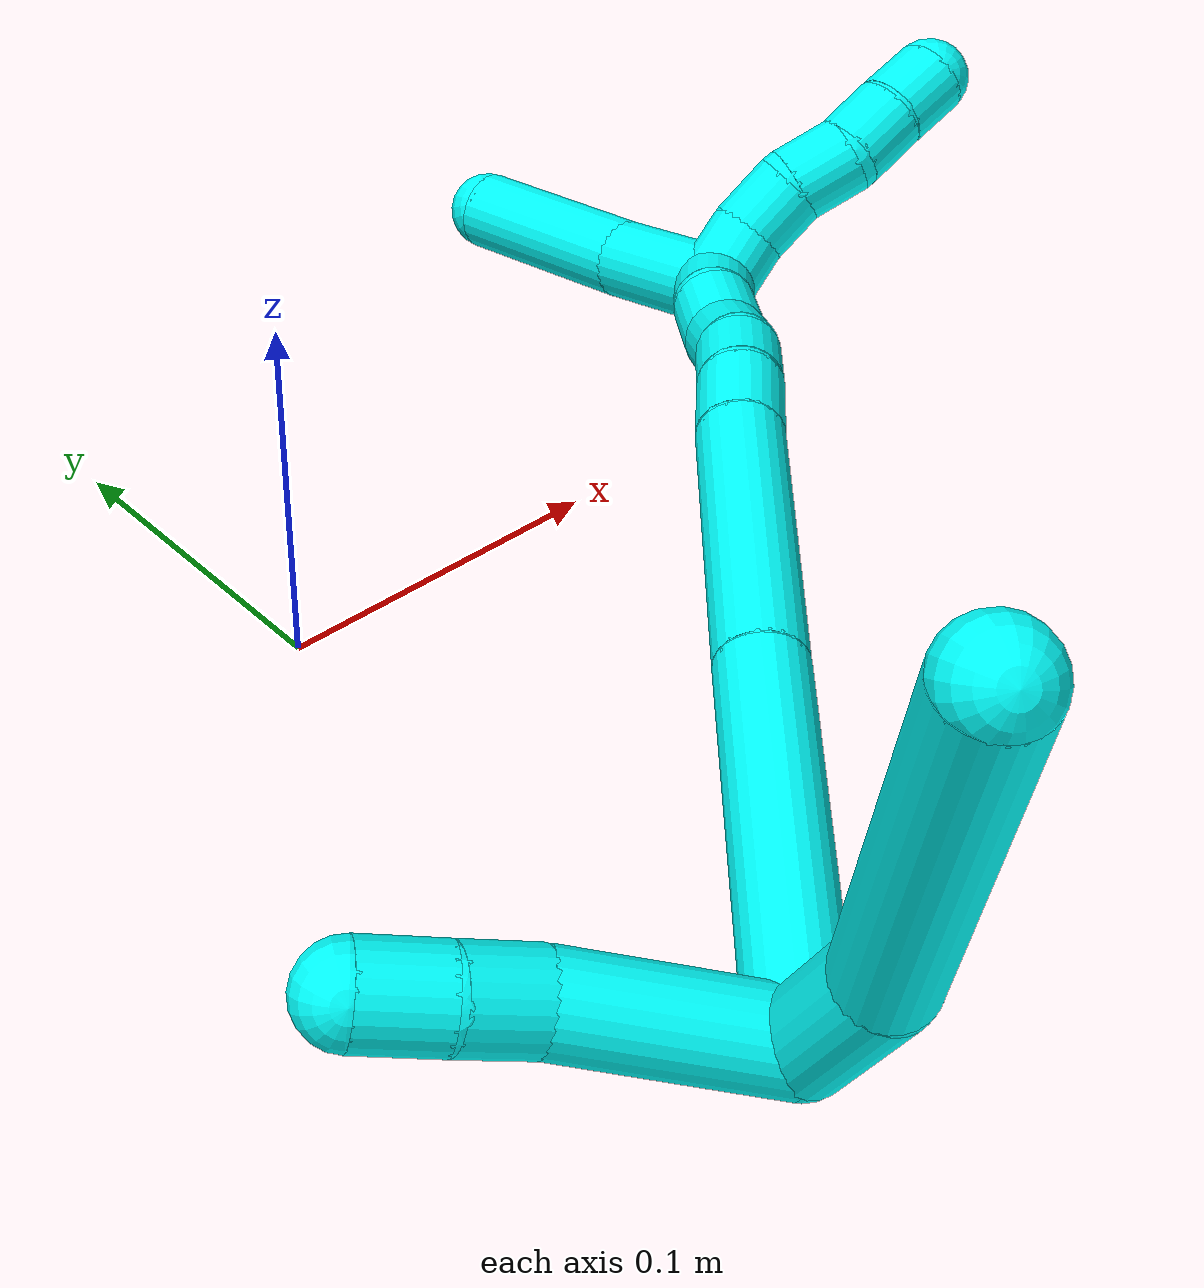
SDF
<sdf version="1.7">
 <world name="default">
  <model name="3">
   <static>0</static>
   <link name="3">
    <collision name="collision-cylinder-e_1_2_8">
     <pose>0.000595 0.011955 0.015941 -0.643487 0.029873 -0.009958</pose>
     <geometry><cylinder><radius>0.0125</radius><length>0.03987</length></cylinder></geometry>
     <surface>
      <friction><ode><mu>1.16</mu><mu2>1.16</mu2><slip1>0</slip1><slip2>0</slip2></ode></friction>
      <contact><ode><kp>1e+06</kp><kd>1</kd><max_vel>0</max_vel><min_depth>0.001</min_depth></ode></contact>
     </surface>
    </collision>
    <visual name="visual-cylinder-e_1_2_8">
     <pose>0.000595 0.011955 0.015941 -0.643487 0.029873 -0.009958</pose>
     <geometry><cylinder><radius>0.0125</radius><length>0.03987</length></cylinder></geometry>
     <material><ambient>0.003922 1 0.996078 1</ambient></material>
    </visual>
    <collision name="collision-cylinder-e_2_8_6">
     <pose>-0.013647 0.056044 0.074066 -0.650964 -0.272839 0.092588</pose>
     <geometry><cylinder><radius>0.0125</radius><length>0.11013</length></cylinder></geometry>
     <surface>
      <friction><ode><mu>1.16</mu><mu2>1.16</mu2><slip1>0</slip1><slip2>0</slip2></ode></friction>
      <contact><ode><kp>1e+06</kp><kd>1</kd><max_vel>0</max_vel><min_depth>0.001</min_depth></ode></contact>
     </surface>
    </collision>
    <visual name="visual-cylinder-e_2_8_6">
     <pose>-0.013647 0.056044 0.074066 -0.650964 -0.272839 0.092588</pose>
     <geometry><cylinder><radius>0.0125</radius><length>0.11013</length></cylinder></geometry>
     <material><ambient>0.003922 1 0.996078 1</ambient></material>
    </visual>
    <collision name="collision-cylinder-e_1_2_9">
     <pose>-0.028152 -0.005107 0.000392 1.49417 -1.39082 -1.31594</pose>
     <geometry><cylinder><radius>0.0125</radius><length>0.057228</length></cylinder></geometry>
     <surface>
      <friction><ode><mu>1.16</mu><mu2>1.16</mu2><slip1>0</slip1><slip2>0</slip2></ode></friction>
      <contact><ode><kp>1e+06</kp><kd>1</kd><max_vel>0</max_vel><min_depth>0.001</min_depth></ode></contact>
     </surface>
    </collision>
    <visual name="visual-cylinder-e_1_2_9">
     <pose>-0.028152 -0.005107 0.000392 1.49417 -1.39082 -1.31594</pose>
     <geometry><cylinder><radius>0.0125</radius><length>0.057228</length></cylinder></geometry>
     <material><ambient>0.003922 1 0.996078 1</ambient></material>
    </visual>
    <collision name="collision-cylinder-e_2_9_10">
     <pose>-0.066051 -0.012727 0.003223 0.8004 -1.22589 -0.57836</pose>
     <geometry><cylinder><radius>0.0125</radius><length>0.020716</length></cylinder></geometry>
     <surface>
      <friction><ode><mu>1.16</mu><mu2>1.16</mu2><slip1>0</slip1><slip2>0</slip2></ode></friction>
      <contact><ode><kp>1e+06</kp><kd>1</kd><max_vel>0</max_vel><min_depth>0.001</min_depth></ode></contact>
     </surface>
    </collision>
    <visual name="visual-cylinder-e_2_9_10">
     <pose>-0.066051 -0.012727 0.003223 0.8004 -1.22589 -0.57836</pose>
     <geometry><cylinder><radius>0.0125</radius><length>0.020716</length></cylinder></geometry>
     <material><ambient>0.003922 1 0.996078 1</ambient></material>
    </visual>
    <collision name="collision-cylinder-e_3_10_5">
     <pose>-0.086364 -0.018251 0.006639 1.25701 -1.27974 -0.991832</pose>
     <geometry><cylinder><radius>0.0125</radius><length>0.022056</length></cylinder></geometry>
     <surface>
      <friction><ode><mu>1.16</mu><mu2>1.16</mu2><slip1>0</slip1><slip2>0</slip2></ode></friction>
      <contact><ode><kp>1e+06</kp><kd>1</kd><max_vel>0</max_vel><min_depth>0.001</min_depth></ode></contact>
     </surface>
    </collision>
    <visual name="visual-cylinder-e_3_10_5">
     <pose>-0.086364 -0.018251 0.006639 1.25701 -1.27974 -0.991832</pose>
     <geometry><cylinder><radius>0.0125</radius><length>0.022056</length></cylinder></geometry>
     <material><ambient>0.003922 1 0.996078 1</ambient></material>
    </visual>
    <collision name="collision-cylinder-e_1_2_11">
     <pose>-0.009407 0.035256 -0.040278 -2.42258 -0.173967 0.455978</pose>
     <geometry><cylinder><radius>0.0125</radius><length>0.108698</length></cylinder></geometry>
     <surface>
      <friction><ode><mu>1.16</mu><mu2>1.16</mu2><slip1>0</slip1><slip2>0</slip2></ode></friction>
      <contact><ode><kp>1e+06</kp><kd>1</kd><max_vel>0</max_vel><min_depth>0.001</min_depth></ode></contact>
     </surface>
    </collision>
    <visual name="visual-cylinder-e_1_2_11">
     <pose>-0.009407 0.035256 -0.040278 -2.42258 -0.173967 0.455978</pose>
     <geometry><cylinder><radius>0.0125</radius><length>0.108698</length></cylinder></geometry>
     <material><ambient>0.003922 1 0.996078 1</ambient></material>
    </visual>
    <collision name="collision-cylinder-e_2_11_12">
     <pose>-0.0252 0.097974 -0.114274 -2.45809 -0.145793 0.404966</pose>
     <geometry><cylinder><radius>0.0125</radius><length>0.087904</length></cylinder></geometry>
     <surface>
      <friction><ode><mu>1.16</mu><mu2>1.16</mu2><slip1>0</slip1><slip2>0</slip2></ode></friction>
      <contact><ode><kp>1e+06</kp><kd>1</kd><max_vel>0</max_vel><min_depth>0.001</min_depth></ode></contact>
     </surface>
    </collision>
    <visual name="visual-cylinder-e_2_11_12">
     <pose>-0.0252 0.097974 -0.114274 -2.45809 -0.145793 0.404966</pose>
     <geometry><cylinder><radius>0.0125</radius><length>0.087904</length></cylinder></geometry>
     <material><ambient>0.003922 1 0.996078 1</ambient></material>
    </visual>
    <collision name="collision-cylinder-e_3_12_13">
     <pose>-0.032369 0.132583 -0.157217 -2.48248 -0.067108 0.195653</pose>
     <geometry><cylinder><radius>0.0125</radius><length>0.023392</length></cylinder></geometry>
     <surface>
      <friction><ode><mu>1.16</mu><mu2>1.16</mu2><slip1>0</slip1><slip2>0</slip2></ode></friction>
      <contact><ode><kp>1e+06</kp><kd>1</kd><max_vel>0</max_vel><min_depth>0.001</min_depth></ode></contact>
     </surface>
    </collision>
    <visual name="visual-cylinder-e_3_12_13">
     <pose>-0.032369 0.132583 -0.157217 -2.48248 -0.067108 0.195653</pose>
     <geometry><cylinder><radius>0.0125</radius><length>0.023392</length></cylinder></geometry>
     <material><ambient>0.003922 1 0.996078 1</ambient></material>
    </visual>
    <collision name="collision-cylinder-e_4_13_14">
     <pose>-0.033482 0.144465 -0.175244 -2.64805 -0.032828 0.130148</pose>
     <geometry><cylinder><radius>0.0125</radius><length>0.020001</length></cylinder></geometry>
     <surface>
      <friction><ode><mu>1.16</mu><mu2>1.16</mu2><slip1>0</slip1><slip2>0</slip2></ode></friction>
      <contact><ode><kp>1e+06</kp><kd>1</kd><max_vel>0</max_vel><min_depth>0.001</min_depth></ode></contact>
     </surface>
    </collision>
    <visual name="visual-cylinder-e_4_13_14">
     <pose>-0.033482 0.144465 -0.175244 -2.64805 -0.032828 0.130148</pose>
     <geometry><cylinder><radius>0.0125</radius><length>0.020001</length></cylinder></geometry>
     <material><ambient>0.003922 1 0.996078 1</ambient></material>
    </visual>
    <collision name="collision-cylinder-e_5_14_15">
     <pose>-0.034517 0.151476 -0.193759 -2.9114 -0.070703 0.593747</pose>
     <geometry><cylinder><radius>0.0125</radius><length>0.020002</length></cylinder></geometry>
     <surface>
      <friction><ode><mu>1.16</mu><mu2>1.16</mu2><slip1>0</slip1><slip2>0</slip2></ode></friction>
      <contact><ode><kp>1e+06</kp><kd>1</kd><max_vel>0</max_vel><min_depth>0.001</min_depth></ode></contact>
     </surface>
    </collision>
    <visual name="visual-cylinder-e_5_14_15">
     <pose>-0.034517 0.151476 -0.193759 -2.9114 -0.070703 0.593747</pose>
     <geometry><cylinder><radius>0.0125</radius><length>0.020002</length></cylinder></geometry>
     <material><ambient>0.003922 1 0.996078 1</ambient></material>
    </visual>
    <collision name="collision-cylinder-e_6_15_16">
     <pose>-0.037346 0.158529 -0.211997 -2.63094 -0.213888 0.780386</pose>
     <geometry><cylinder><radius>0.0125</radius><length>0.02</length></cylinder></geometry>
     <surface>
      <friction><ode><mu>1.16</mu><mu2>1.16</mu2><slip1>0</slip1><slip2>0</slip2></ode></friction>
      <contact><ode><kp>1e+06</kp><kd>1</kd><max_vel>0</max_vel><min_depth>0.001</min_depth></ode></contact>
     </surface>
    </collision>
    <visual name="visual-cylinder-e_6_15_16">
     <pose>-0.037346 0.158529 -0.211997 -2.63094 -0.213888 0.780386</pose>
     <geometry><cylinder><radius>0.0125</radius><length>0.02</length></cylinder></geometry>
     <material><ambient>0.003922 1 0.996078 1</ambient></material>
    </visual>
    <collision name="collision-cylinder-e_7_16_1">
     <pose>-0.039039 0.167206 -0.229722 -2.74052 0.042969 -0.210638</pose>
     <geometry><cylinder><radius>0.0125</radius><length>0.020002</length></cylinder></geometry>
     <surface>
      <friction><ode><mu>1.16</mu><mu2>1.16</mu2><slip1>0</slip1><slip2>0</slip2></ode></friction>
      <contact><ode><kp>1e+06</kp><kd>1</kd><max_vel>0</max_vel><min_depth>0.001</min_depth></ode></contact>
     </surface>
    </collision>
    <visual name="visual-cylinder-e_7_16_1">
     <pose>-0.039039 0.167206 -0.229722 -2.74052 0.042969 -0.210638</pose>
     <geometry><cylinder><radius>0.0125</radius><length>0.020002</length></cylinder></geometry>
     <material><ambient>0.003922 1 0.996078 1</ambient></material>
    </visual>
    <collision name="collision-cylinder-e_1_1_17">
     <pose>-0.036448 0.180767 -0.240337 -1.71636 0.21787 -0.251803</pose>
     <geometry><cylinder><radius>0.0125</radius><length>0.02</length></cylinder></geometry>
     <surface>
      <friction><ode><mu>1.16</mu><mu2>1.16</mu2><slip1>0</slip1><slip2>0</slip2></ode></friction>
      <contact><ode><kp>1e+06</kp><kd>1</kd><max_vel>0</max_vel><min_depth>0.001</min_depth></ode></contact>
     </surface>
    </collision>
    <visual name="visual-cylinder-e_1_1_17">
     <pose>-0.036448 0.180767 -0.240337 -1.71636 0.21787 -0.251803</pose>
     <geometry><cylinder><radius>0.0125</radius><length>0.02</length></cylinder></geometry>
     <material><ambient>0.003922 1 0.996078 1</ambient></material>
    </visual>
    <collision name="collision-cylinder-e_2_17_18">
     <pose>-0.030828 0.199662 -0.240091 -1.39264 0.35315 -0.296162</pose>
     <geometry><cylinder><radius>0.0125</radius><length>0.02</length></cylinder></geometry>
     <surface>
      <friction><ode><mu>1.16</mu><mu2>1.16</mu2><slip1>0</slip1><slip2>0</slip2></ode></friction>
      <contact><ode><kp>1e+06</kp><kd>1</kd><max_vel>0</max_vel><min_depth>0.001</min_depth></ode></contact>
     </surface>
    </collision>
    <visual name="visual-cylinder-e_2_17_18">
     <pose>-0.030828 0.199662 -0.240091 -1.39264 0.35315 -0.296162</pose>
     <geometry><cylinder><radius>0.0125</radius><length>0.02</length></cylinder></geometry>
     <material><ambient>0.003922 1 0.996078 1</ambient></material>
    </visual>
    <collision name="collision-cylinder-e_3_18_19">
     <pose>-0.021211 0.216752 -0.237824 -1.49402 0.663407 -0.617502</pose>
     <geometry><cylinder><radius>0.0125</radius><length>0.02</length></cylinder></geometry>
     <surface>
      <friction><ode><mu>1.16</mu><mu2>1.16</mu2><slip1>0</slip1><slip2>0</slip2></ode></friction>
      <contact><ode><kp>1e+06</kp><kd>1</kd><max_vel>0</max_vel><min_depth>0.001</min_depth></ode></contact>
     </surface>
    </collision>
    <visual name="visual-cylinder-e_3_18_19">
     <pose>-0.021211 0.216752 -0.237824 -1.49402 0.663407 -0.617502</pose>
     <geometry><cylinder><radius>0.0125</radius><length>0.02</length></cylinder></geometry>
     <material><ambient>0.003922 1 0.996078 1</ambient></material>
    </visual>
    <collision name="collision-cylinder-e_4_19_20">
     <pose>-0.010744 0.233424 -0.239145 -1.7858 0.44549 -0.54844</pose>
     <geometry><cylinder><radius>0.0125</radius><length>0.02</length></cylinder></geometry>
     <surface>
      <friction><ode><mu>1.16</mu><mu2>1.16</mu2><slip1>0</slip1><slip2>0</slip2></ode></friction>
      <contact><ode><kp>1e+06</kp><kd>1</kd><max_vel>0</max_vel><min_depth>0.001</min_depth></ode></contact>
     </surface>
    </collision>
    <visual name="visual-cylinder-e_4_19_20">
     <pose>-0.010744 0.233424 -0.239145 -1.7858 0.44549 -0.54844</pose>
     <geometry><cylinder><radius>0.0125</radius><length>0.02</length></cylinder></geometry>
     <material><ambient>0.003922 1 0.996078 1</ambient></material>
    </visual>
    <collision name="collision-cylinder-e_5_20_4">
     <pose>-0.001864 0.250616 -0.244062 -1.9139 0.474691 -0.661375</pose>
     <geometry><cylinder><radius>0.0125</radius><length>0.02</length></cylinder></geometry>
     <surface>
      <friction><ode><mu>1.16</mu><mu2>1.16</mu2><slip1>0</slip1><slip2>0</slip2></ode></friction>
      <contact><ode><kp>1e+06</kp><kd>1</kd><max_vel>0</max_vel><min_depth>0.001</min_depth></ode></contact>
     </surface>
    </collision>
    <visual name="visual-cylinder-e_5_20_4">
     <pose>-0.001864 0.250616 -0.244062 -1.9139 0.474691 -0.661375</pose>
     <geometry><cylinder><radius>0.0125</radius><length>0.02</length></cylinder></geometry>
     <material><ambient>0.003922 1 0.996078 1</ambient></material>
    </visual>
    <collision name="collision-cylinder-e_1_1_21">
     <pose>-0.051444 0.171336 -0.254566 -3.1269 -0.686997 3.10053</pose>
     <geometry><cylinder><radius>0.0125</radius><length>0.040474</length></cylinder></geometry>
     <surface>
      <friction><ode><mu>1.16</mu><mu2>1.16</mu2><slip1>0</slip1><slip2>0</slip2></ode></friction>
      <contact><ode><kp>1e+06</kp><kd>1</kd><max_vel>0</max_vel><min_depth>0.001</min_depth></ode></contact>
     </surface>
    </collision>
    <visual name="visual-cylinder-e_1_1_21">
     <pose>-0.051444 0.171336 -0.254566 -3.1269 -0.686997 3.10053</pose>
     <geometry><cylinder><radius>0.0125</radius><length>0.040474</length></cylinder></geometry>
     <material><ambient>0.003922 1 0.996078 1</ambient></material>
    </visual>
    <collision name="collision-cylinder-e_2_21_3">
     <pose>-0.086371 0.172699 -0.290121 -3.08478 -0.836483 3.0139</pose>
     <geometry><cylinder><radius>0.0125</radius><length>0.059526</length></cylinder></geometry>
     <surface>
      <friction><ode><mu>1.16</mu><mu2>1.16</mu2><slip1>0</slip1><slip2>0</slip2></ode></friction>
      <contact><ode><kp>1e+06</kp><kd>1</kd><max_vel>0</max_vel><min_depth>0.001</min_depth></ode></contact>
     </surface>
    </collision>
    <visual name="visual-cylinder-e_2_21_3">
     <pose>-0.086371 0.172699 -0.290121 -3.08478 -0.836483 3.0139</pose>
     <geometry><cylinder><radius>0.0125</radius><length>0.059526</length></cylinder></geometry>
     <material><ambient>0.003922 1 0.996078 1</ambient></material>
    </visual>
    <collision name="collision-sphere-3">
     <pose>-0.108464 0.173831 -0.310033 0 -0 0</pose>
     <geometry><sphere><radius>0.0125</radius></sphere></geometry>
     <surface>
      <friction><ode><mu>1.16</mu><mu2>1.16</mu2><slip1>0</slip1><slip2>0</slip2></ode></friction>
      <contact><ode><kp>1e+06</kp><kd>1</kd><max_vel>0</max_vel><min_depth>0.001</min_depth></ode></contact>
     </surface>
    </collision>
    <visual name="visual-sphere-3">
     <pose>-0.108464 0.173831 -0.310033 0 -0 0</pose>
     <geometry><sphere><radius>0.0125</radius></sphere></geometry>
     <material><ambient>0.003922 1 0.996078 1</ambient></material>
    </visual>
    <collision name="collision-sphere-21">
     <pose>-0.064278 0.171566 -0.27021 0 -0 0</pose>
     <geometry><sphere><radius>0.0125</radius></sphere></geometry>
     <surface>
      <friction><ode><mu>1.16</mu><mu2>1.16</mu2><slip1>0</slip1><slip2>0</slip2></ode></friction>
      <contact><ode><kp>1e+06</kp><kd>1</kd><max_vel>0</max_vel><min_depth>0.001</min_depth></ode></contact>
     </surface>
    </collision>
    <visual name="visual-sphere-21">
     <pose>-0.064278 0.171566 -0.27021 0 -0 0</pose>
     <geometry><sphere><radius>0.0125</radius></sphere></geometry>
     <material><ambient>0.003922 1 0.996078 1</ambient></material>
    </visual>
    <collision name="collision-sphere-4">
     <pose>0.002706 0.258992 -0.247054 0 -0 0</pose>
     <geometry><sphere><radius>0.0125</radius></sphere></geometry>
     <surface>
      <friction><ode><mu>1.16</mu><mu2>1.16</mu2><slip1>0</slip1><slip2>0</slip2></ode></friction>
      <contact><ode><kp>1e+06</kp><kd>1</kd><max_vel>0</max_vel><min_depth>0.001</min_depth></ode></contact>
     </surface>
    </collision>
    <visual name="visual-sphere-4">
     <pose>0.002706 0.258992 -0.247054 0 -0 0</pose>
     <geometry><sphere><radius>0.0125</radius></sphere></geometry>
     <material><ambient>0.003922 1 0.996078 1</ambient></material>
    </visual>
    <collision name="collision-sphere-20">
     <pose>-0.006435 0.24224 -0.24107 0 -0 0</pose>
     <geometry><sphere><radius>0.0125</radius></sphere></geometry>
     <surface>
      <friction><ode><mu>1.16</mu><mu2>1.16</mu2><slip1>0</slip1><slip2>0</slip2></ode></friction>
      <contact><ode><kp>1e+06</kp><kd>1</kd><max_vel>0</max_vel><min_depth>0.001</min_depth></ode></contact>
     </surface>
    </collision>
    <visual name="visual-sphere-20">
     <pose>-0.006435 0.24224 -0.24107 0 -0 0</pose>
     <geometry><sphere><radius>0.0125</radius></sphere></geometry>
     <material><ambient>0.003922 1 0.996078 1</ambient></material>
    </visual>
    <collision name="collision-sphere-5">
     <pose>-0.096928 -0.021261 0.007616 0 -0 0</pose>
     <geometry><sphere><radius>0.0125</radius></sphere></geometry>
     <surface>
      <friction><ode><mu>1.16</mu><mu2>1.16</mu2><slip1>0</slip1><slip2>0</slip2></ode></friction>
      <contact><ode><kp>1e+06</kp><kd>1</kd><max_vel>0</max_vel><min_depth>0.001</min_depth></ode></contact>
     </surface>
    </collision>
    <visual name="visual-sphere-5">
     <pose>-0.096928 -0.021261 0.007616 0 -0 0</pose>
     <geometry><sphere><radius>0.0125</radius></sphere></geometry>
     <material><ambient>0.003922 1 0.996078 1</ambient></material>
    </visual>
    <collision name="collision-sphere-10">
     <pose>-0.075799 -0.015241 0.005662 0 -0 0</pose>
     <geometry><sphere><radius>0.0125</radius></sphere></geometry>
     <surface>
      <friction><ode><mu>1.16</mu><mu2>1.16</mu2><slip1>0</slip1><slip2>0</slip2></ode></friction>
      <contact><ode><kp>1e+06</kp><kd>1</kd><max_vel>0</max_vel><min_depth>0.001</min_depth></ode></contact>
     </surface>
    </collision>
    <visual name="visual-sphere-10">
     <pose>-0.075799 -0.015241 0.005662 0 -0 0</pose>
     <geometry><sphere><radius>0.0125</radius></sphere></geometry>
     <material><ambient>0.003922 1 0.996078 1</ambient></material>
    </visual>
    <collision name="collision-sphere-6">
     <pose>-0.028485 0.088176 0.11625 0 -0 0</pose>
     <geometry><sphere><radius>0.0125</radius></sphere></geometry>
     <surface>
      <friction><ode><mu>1.16</mu><mu2>1.16</mu2><slip1>0</slip1><slip2>0</slip2></ode></friction>
      <contact><ode><kp>1e+06</kp><kd>1</kd><max_vel>0</max_vel><min_depth>0.001</min_depth></ode></contact>
     </surface>
    </collision>
    <visual name="visual-sphere-6">
     <pose>-0.028485 0.088176 0.11625 0 -0 0</pose>
     <geometry><sphere><radius>0.0125</radius></sphere></geometry>
     <material><ambient>0.003922 1 0.996078 1</ambient></material>
    </visual>
    <collision name="collision-sphere-9">
     <pose>-0.056303 -0.010214 0.000784 0 -0 0</pose>
     <geometry><sphere><radius>0.0125</radius></sphere></geometry>
     <surface>
      <friction><ode><mu>1.16</mu><mu2>1.16</mu2><slip1>0</slip1><slip2>0</slip2></ode></friction>
      <contact><ode><kp>1e+06</kp><kd>1</kd><max_vel>0</max_vel><min_depth>0.001</min_depth></ode></contact>
     </surface>
    </collision>
    <visual name="visual-sphere-9">
     <pose>-0.056303 -0.010214 0.000784 0 -0 0</pose>
     <geometry><sphere><radius>0.0125</radius></sphere></geometry>
     <material><ambient>0.003922 1 0.996078 1</ambient></material>
    </visual>
    <collision name="collision-sphere-2">
     <geometry><sphere><radius>0.0125</radius></sphere></geometry>
     <surface>
      <friction><ode><mu>1.16</mu><mu2>1.16</mu2><slip1>0</slip1><slip2>0</slip2></ode></friction>
      <contact><ode><kp>1e+06</kp><kd>1</kd><max_vel>0</max_vel><min_depth>0.001</min_depth></ode></contact>
     </surface>
    </collision>
    <visual name="visual-sphere-2">
     <geometry><sphere><radius>0.0125</radius></sphere></geometry>
     <material><ambient>0.003922 1 0.996078 1</ambient></material>
    </visual>
    <collision name="collision-sphere-19">
     <pose>-0.015053 0.224608 -0.237219 0 -0 0</pose>
     <geometry><sphere><radius>0.0125</radius></sphere></geometry>
     <surface>
      <friction><ode><mu>1.16</mu><mu2>1.16</mu2><slip1>0</slip1><slip2>0</slip2></ode></friction>
      <contact><ode><kp>1e+06</kp><kd>1</kd><max_vel>0</max_vel><min_depth>0.001</min_depth></ode></contact>
     </surface>
    </collision>
    <visual name="visual-sphere-19">
     <pose>-0.015053 0.224608 -0.237219 0 -0 0</pose>
     <geometry><sphere><radius>0.0125</radius></sphere></geometry>
     <material><ambient>0.003922 1 0.996078 1</ambient></material>
    </visual>
    <collision name="collision-sphere-8">
     <pose>0.001191 0.023911 0.031882 0 -0 0</pose>
     <geometry><sphere><radius>0.0125</radius></sphere></geometry>
     <surface>
      <friction><ode><mu>1.16</mu><mu2>1.16</mu2><slip1>0</slip1><slip2>0</slip2></ode></friction>
      <contact><ode><kp>1e+06</kp><kd>1</kd><max_vel>0</max_vel><min_depth>0.001</min_depth></ode></contact>
     </surface>
    </collision>
    <visual name="visual-sphere-8">
     <pose>0.001191 0.023911 0.031882 0 -0 0</pose>
     <geometry><sphere><radius>0.0125</radius></sphere></geometry>
     <material><ambient>0.003922 1 0.996078 1</ambient></material>
    </visual>
    <collision name="collision-sphere-11">
     <pose>-0.018815 0.070513 -0.080556 0 -0 0</pose>
     <geometry><sphere><radius>0.0125</radius></sphere></geometry>
     <surface>
      <friction><ode><mu>1.16</mu><mu2>1.16</mu2><slip1>0</slip1><slip2>0</slip2></ode></friction>
      <contact><ode><kp>1e+06</kp><kd>1</kd><max_vel>0</max_vel><min_depth>0.001</min_depth></ode></contact>
     </surface>
    </collision>
    <visual name="visual-sphere-11">
     <pose>-0.018815 0.070513 -0.080556 0 -0 0</pose>
     <geometry><sphere><radius>0.0125</radius></sphere></geometry>
     <material><ambient>0.003922 1 0.996078 1</ambient></material>
    </visual>
    <collision name="collision-sphere-12">
     <pose>-0.031585 0.125436 -0.147991 0 -0 0</pose>
     <geometry><sphere><radius>0.0125</radius></sphere></geometry>
     <surface>
      <friction><ode><mu>1.16</mu><mu2>1.16</mu2><slip1>0</slip1><slip2>0</slip2></ode></friction>
      <contact><ode><kp>1e+06</kp><kd>1</kd><max_vel>0</max_vel><min_depth>0.001</min_depth></ode></contact>
     </surface>
    </collision>
    <visual name="visual-sphere-12">
     <pose>-0.031585 0.125436 -0.147991 0 -0 0</pose>
     <geometry><sphere><radius>0.0125</radius></sphere></geometry>
     <material><ambient>0.003922 1 0.996078 1</ambient></material>
    </visual>
    <collision name="collision-sphere-13">
     <pose>-0.033154 0.13973 -0.166442 0 -0 0</pose>
     <geometry><sphere><radius>0.0125</radius></sphere></geometry>
     <surface>
      <friction><ode><mu>1.16</mu><mu2>1.16</mu2><slip1>0</slip1><slip2>0</slip2></ode></friction>
      <contact><ode><kp>1e+06</kp><kd>1</kd><max_vel>0</max_vel><min_depth>0.001</min_depth></ode></contact>
     </surface>
    </collision>
    <visual name="visual-sphere-13">
     <pose>-0.033154 0.13973 -0.166442 0 -0 0</pose>
     <geometry><sphere><radius>0.0125</radius></sphere></geometry>
     <material><ambient>0.003922 1 0.996078 1</ambient></material>
    </visual>
    <collision name="collision-sphere-14">
     <pose>-0.03381 0.1492 -0.184046 0 -0 0</pose>
     <geometry><sphere><radius>0.0125</radius></sphere></geometry>
     <surface>
      <friction><ode><mu>1.16</mu><mu2>1.16</mu2><slip1>0</slip1><slip2>0</slip2></ode></friction>
      <contact><ode><kp>1e+06</kp><kd>1</kd><max_vel>0</max_vel><min_depth>0.001</min_depth></ode></contact>
     </surface>
    </collision>
    <visual name="visual-sphere-14">
     <pose>-0.03381 0.1492 -0.184046 0 -0 0</pose>
     <geometry><sphere><radius>0.0125</radius></sphere></geometry>
     <material><ambient>0.003922 1 0.996078 1</ambient></material>
    </visual>
    <collision name="collision-sphere-15">
     <pose>-0.035223 0.153752 -0.203472 0 -0 0</pose>
     <geometry><sphere><radius>0.0125</radius></sphere></geometry>
     <surface>
      <friction><ode><mu>1.16</mu><mu2>1.16</mu2><slip1>0</slip1><slip2>0</slip2></ode></friction>
      <contact><ode><kp>1e+06</kp><kd>1</kd><max_vel>0</max_vel><min_depth>0.001</min_depth></ode></contact>
     </surface>
    </collision>
    <visual name="visual-sphere-15">
     <pose>-0.035223 0.153752 -0.203472 0 -0 0</pose>
     <geometry><sphere><radius>0.0125</radius></sphere></geometry>
     <material><ambient>0.003922 1 0.996078 1</ambient></material>
    </visual>
    <collision name="collision-sphere-16">
     <pose>-0.039468 0.163305 -0.220523 0 -0 0</pose>
     <geometry><sphere><radius>0.0125</radius></sphere></geometry>
     <surface>
      <friction><ode><mu>1.16</mu><mu2>1.16</mu2><slip1>0</slip1><slip2>0</slip2></ode></friction>
      <contact><ode><kp>1e+06</kp><kd>1</kd><max_vel>0</max_vel><min_depth>0.001</min_depth></ode></contact>
     </surface>
    </collision>
    <visual name="visual-sphere-16">
     <pose>-0.039468 0.163305 -0.220523 0 -0 0</pose>
     <geometry><sphere><radius>0.0125</radius></sphere></geometry>
     <material><ambient>0.003922 1 0.996078 1</ambient></material>
    </visual>
    <collision name="collision-sphere-1">
     <pose>-0.038609 0.171107 -0.238921 0 -0 0</pose>
     <geometry><sphere><radius>0.0125</radius></sphere></geometry>
     <surface>
      <friction><ode><mu>1.16</mu><mu2>1.16</mu2><slip1>0</slip1><slip2>0</slip2></ode></friction>
      <contact><ode><kp>1e+06</kp><kd>1</kd><max_vel>0</max_vel><min_depth>0.001</min_depth></ode></contact>
     </surface>
    </collision>
    <visual name="visual-sphere-1">
     <pose>-0.038609 0.171107 -0.238921 0 -0 0</pose>
     <geometry><sphere><radius>0.0125</radius></sphere></geometry>
     <material><ambient>0.003922 1 0.996078 1</ambient></material>
    </visual>
    <collision name="collision-sphere-18">
     <pose>-0.027369 0.208896 -0.238428 0 -0 0</pose>
     <geometry><sphere><radius>0.0125</radius></sphere></geometry>
     <surface>
      <friction><ode><mu>1.16</mu><mu2>1.16</mu2><slip1>0</slip1><slip2>0</slip2></ode></friction>
      <contact><ode><kp>1e+06</kp><kd>1</kd><max_vel>0</max_vel><min_depth>0.001</min_depth></ode></contact>
     </surface>
    </collision>
    <visual name="visual-sphere-18">
     <pose>-0.027369 0.208896 -0.238428 0 -0 0</pose>
     <geometry><sphere><radius>0.0125</radius></sphere></geometry>
     <material><ambient>0.003922 1 0.996078 1</ambient></material>
    </visual>
    <collision name="collision-sphere-17">
     <pose>-0.034286 0.190427 -0.241753 0 -0 0</pose>
     <geometry><sphere><radius>0.0125</radius></sphere></geometry>
     <surface>
      <friction><ode><mu>1.16</mu><mu2>1.16</mu2><slip1>0</slip1><slip2>0</slip2></ode></friction>
      <contact><ode><kp>1e+06</kp><kd>1</kd><max_vel>0</max_vel><min_depth>0.001</min_depth></ode></contact>
     </surface>
    </collision>
    <visual name="visual-sphere-17">
     <pose>-0.034286 0.190427 -0.241753 0 -0 0</pose>
     <geometry><sphere><radius>0.0125</radius></sphere></geometry>
     <material><ambient>0.003922 1 0.996078 1</ambient></material>
    </visual>
    <inertial>
     <pose>-0.029989 0.09668 -0.102521 0 -0 0</pose>
     <mass>0.75</mass>
     <inertia>
      <ixx>0.00033</ixx>
      <ixy>0</ixy>
      <ixz>0</ixz>
      <iyy>0.000136</iyy>
      <iyz>0</iyz>
      <izz>-0.000107</izz>
     </inertia>
    </inertial>
   </link>
   <pose>-0.00702 -0.192037 0.013908 0.935556 0.37354 -0.838774</pose>
  </model>
 </world>
</sdf>
